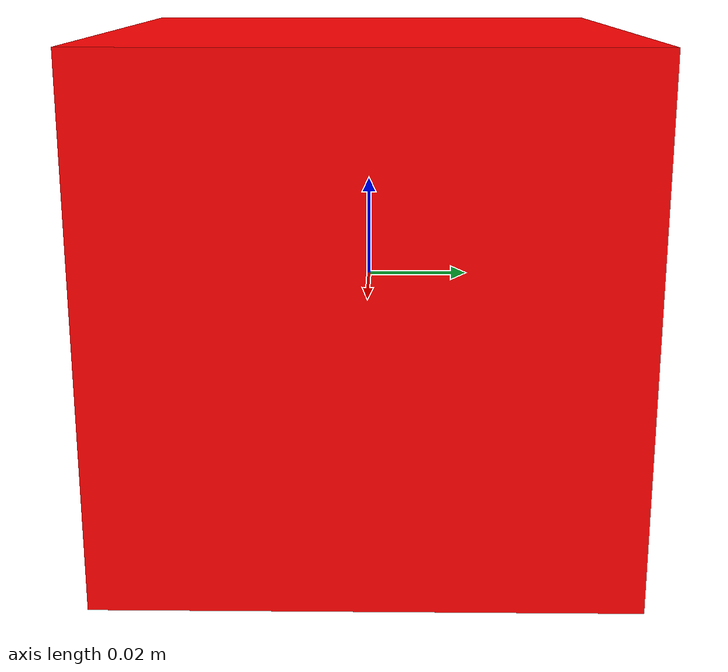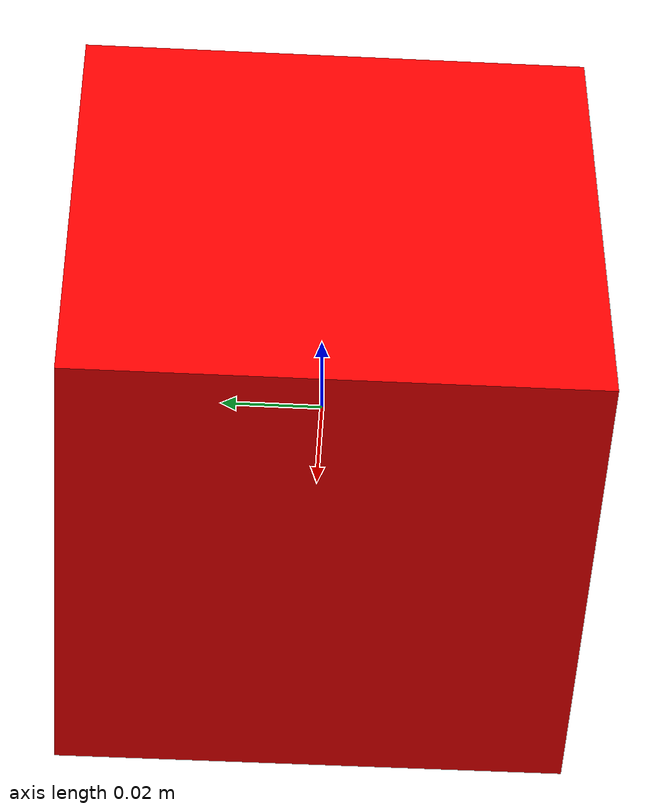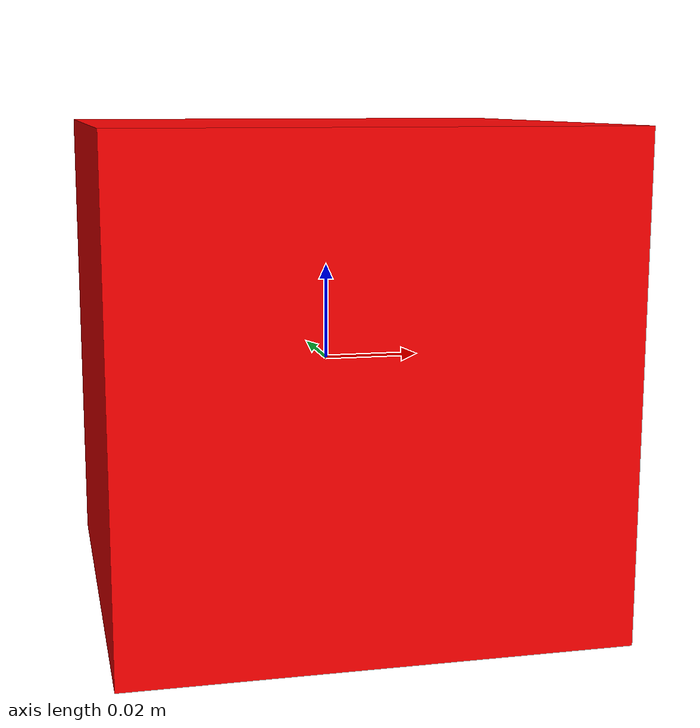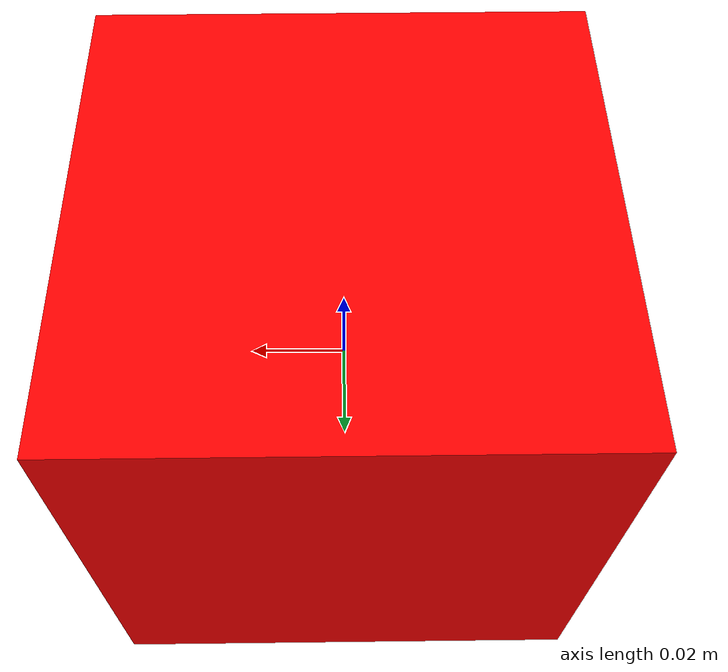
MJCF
<mujoco model="biped_circular_boom_assembly">
  <!-- Local compiler rules strictly enforced to maintain compatibility with updated versions -->
  <compiler angle="degree" inertiafromgeom="false" autolimits="true" coordinate="local"/>

  <option>
    <flag contact="enable"/>
  </option>

  <default>
    <mesh scale="1 1 1"/>
    <geom type="mesh" rgba="0.753 0.753 0.753 1"/>
    <joint type="hinge" limited="true"/>
    <position ctrllimited="true" kp="1" kv="0.1"/>
  </default>

  <asset>
    <!-- Boom Assemblies (Optimized 15,000 face binary configurations) -->
    <mesh name="base_link" file="base_link.STL" />
    <mesh name="upper_structure_link" file="upper_structure_link.STL" />
    <mesh name="spinning_boom_link" file="spinning_boom_link.STL" />
    <mesh name="robot_holding_link" file="robot_holding_link.STL" />

    <!-- Robot Meshes -->
    <mesh name="Hip" file="hip_link.stl"/>
    <mesh name="Left_Thigh" file="L_thigh_link.stl"/>
    <mesh name="Left_Shank" file="L_shank_link.stl"/>
    <mesh name="Right_Thigh" file="R_thigh_link.stl"/>
    <mesh name="Right_Shank" file="R_shank_link.stl"/>
  </asset>

  <worldbody>
    <body name="base_link" pos="0 0 0">

        <site
            name="origin"
            type="sphere"
            size="0.02"
            rgba="0 1 0 1"/>

        <geom
            type="box"
            size="0.05 0.05 0.05"
            rgba="1 0 0 1"/>

    </body>

  </worldbody>
</mujoco>
